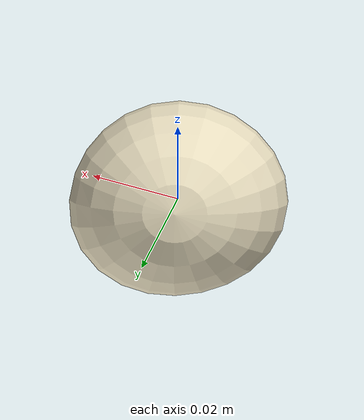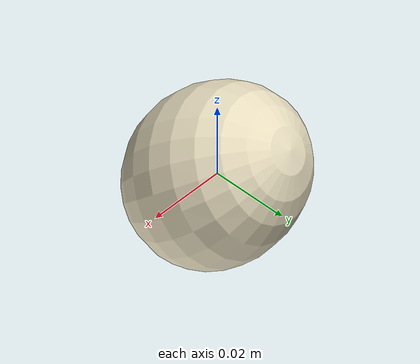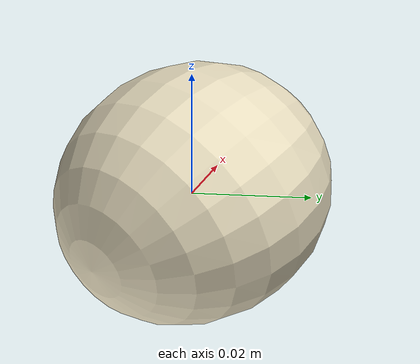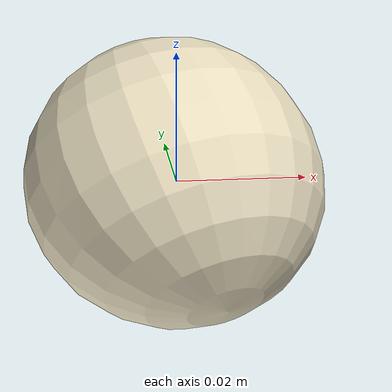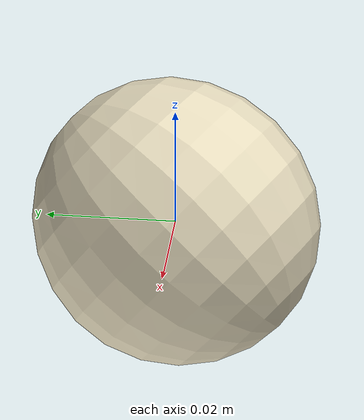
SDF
<?xml version="1.0"?>
<sdf version="1.7">
  <model name="cotton_pick_C_03">
    <static>false</static>
    <allow_auto_disable>false</allow_auto_disable>
    <link name="cotton_pick_C_03_link">
      <gravity>false</gravity>
      <self_collide>false</self_collide>
      <inertial>
        <mass>0.01200</mass>
        <inertia>
          <ixx>0.00000188</ixx>
          <iyy>0.00000188</iyy>
          <izz>0.00000188</izz>
          <ixy>0</ixy>
          <ixz>0</ixz>
          <iyz>0</iyz>
        </inertia>
      </inertial>
      <visual name="cotton_pick_C_03_visual">
        <geometry>
          <mesh>
            <uri>model://cotton_pick_C_03/meshes/cotton_pick_C_03.dae</uri>
          </mesh>
        </geometry>
      </visual>
      <collision name="cotton_pick_C_03_sphere_collision">
        <geometry>
          <sphere>
            <radius>0.01977</radius>
          </sphere>
        </geometry>
        <surface>
          <friction>
            <ode>
              <mu>1.6</mu>
              <mu2>1.6</mu2>
            </ode>
          </friction>
          <contact>
            <ode>
              <kp>8000</kp>
              <kd>80</kd>
            </ode>
          </contact>
        </surface>
      </collision>
    </link>
  </model>
</sdf>
